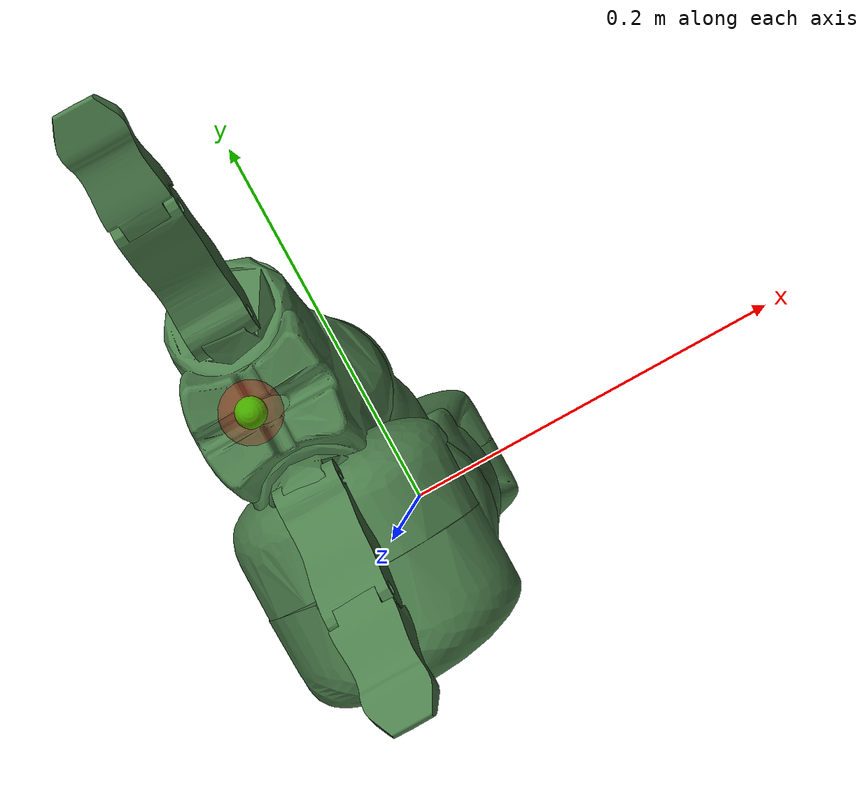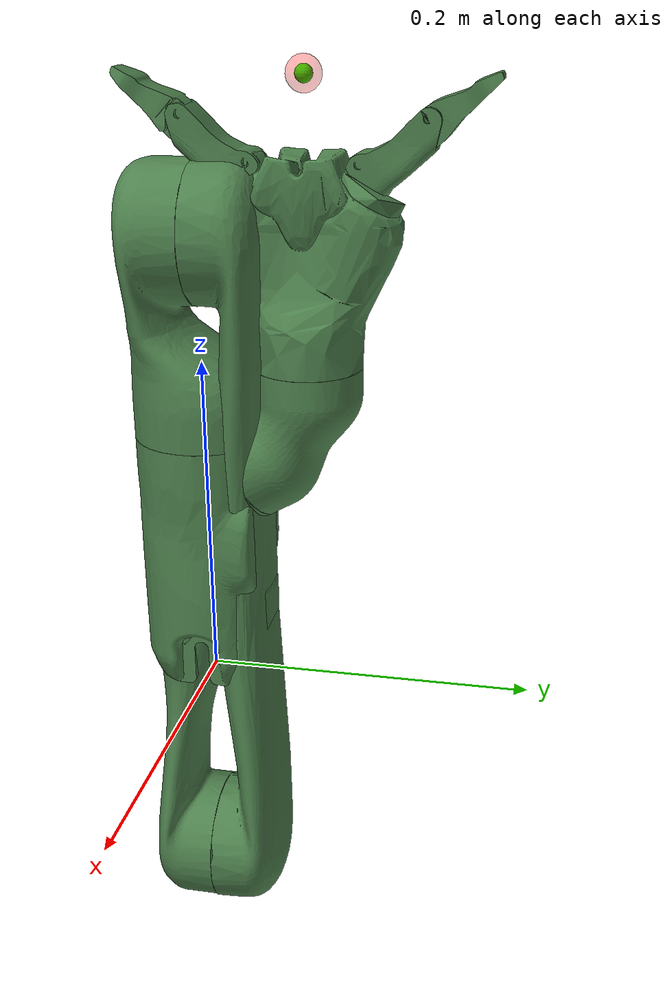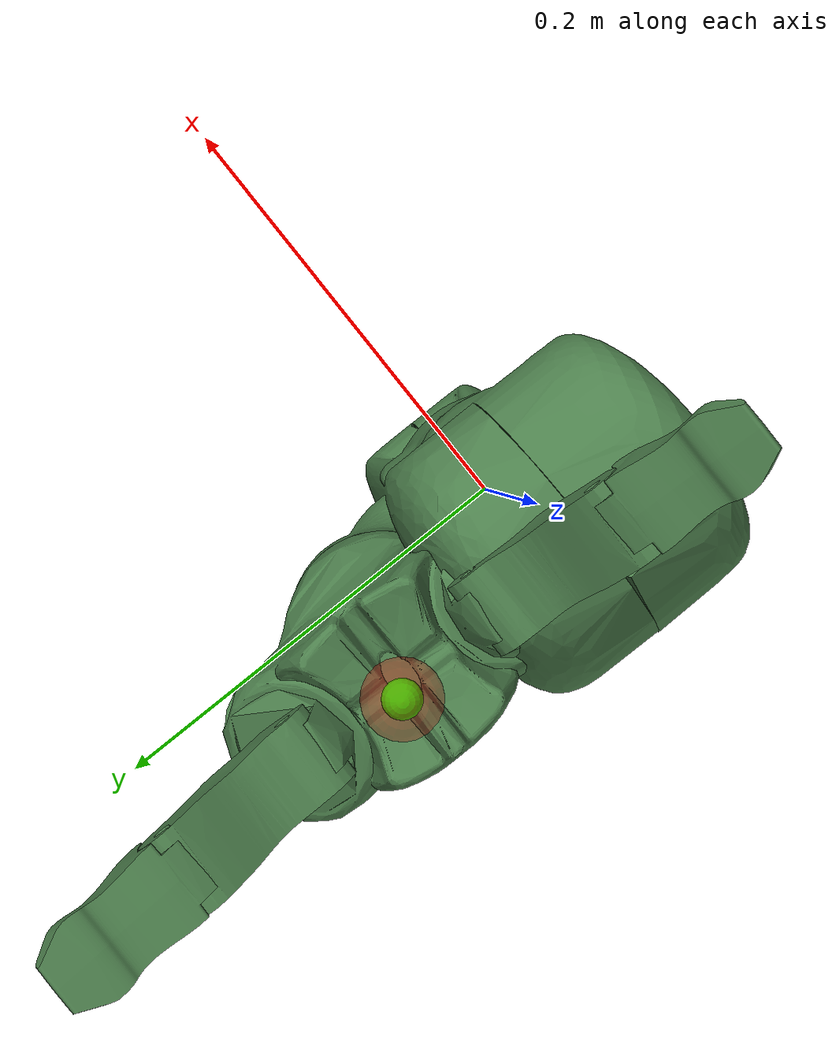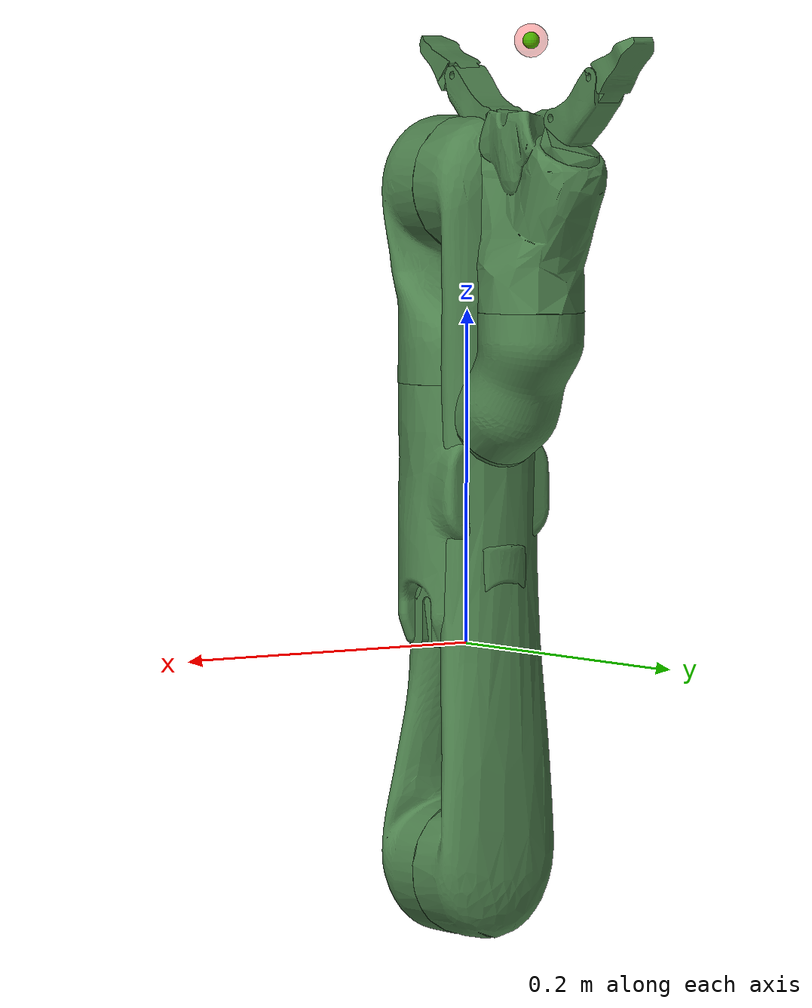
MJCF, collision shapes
<mujoco model="j2n6s200">
  <compiler angle="radian"/>

  <!-- Lighting that brings out specular highlights on the carbon fiber -->
  <visual>
    <headlight ambient="0.3 0.3 0.3" diffuse="0.5 0.5 0.5" specular="0.5 0.5 0.5"/>
  </visual>

  <default>
    <default class="jaco2">
      <joint damping="0.5"/>
      <default class="jaco2_visual">
        <geom type="mesh" contype="0" conaffinity="0" group="2"/>
      </default>
      <default class="jaco2_collision">
        <geom type="mesh" contype="1" conaffinity="1" group="3"
              rgba="0.3 0.5 0.3 0.2"/>
      </default>
      <default class="jaco2_ring">
        <geom type="mesh" contype="0" conaffinity="0" group="2"/>
      </default>
    </default>
  </default>

  <asset>
    <!-- base, shoulder, arm, forearm, wrist: diffuse=0.179, specular=0.461, shininess=50, reflectivity=0.075 -->
    <material name="carbon_fiber" rgba="0.179 0.179 0.179 1" specular="0.461" shininess="0.39" reflectance="0.075"/>
    <!-- ring_big, ring_small: diffuse=0.627, specular=0.5, shininess=50 -->
    <material name="brushed_aluminum" rgba="0.627 0.627 0.627 1" specular="0.5" shininess="0.39"/>
    <!-- hand_2finger: no material in DAE, use same as carbon_fiber -->
    <material name="matte_black" rgba="0.179 0.179 0.179 1" specular="0.461" shininess="0.39" reflectance="0.075"/>
    <!-- finger_proximal, finger_distal: diffuse=0.596, specular=0.5, shininess=50 -->
    <material name="finger_rubber" rgba="0.596 0.596 0.596 1" specular="0.5" shininess="0.39"/>

    <mesh name="base" file="base.stl"/>
    <mesh name="shoulder" file="shoulder.stl"/>
    <mesh name="arm" file="arm.stl"/>
    <mesh name="forearm" file="forearm.stl"/>
    <mesh name="wrist" file="wrist.stl"/>
    <mesh name="hand_2finger" file="hand_2finger.stl"/>
    <mesh name="ring_big" file="ring_big.stl"/>
    <mesh name="ring_small" file="ring_small.stl"/>
    <mesh name="finger_proximal" file="finger_proximal.stl"/>
    <mesh name="finger_distal" file="finger_distal.stl"/>
  </asset>

  <worldbody>
    <body name="j2n6s200_link_base" childclass="jaco2">
      <inertial pos="0 0 0.1255" mass="0.46784" diaginertia="0.000951 0.000951 0.000374"/>
      <geom class="jaco2_visual" mesh="base" material="matte_black"/>
      <geom class="jaco2_collision" mesh="base"/>

      <site name="base_mount_site" pos="0 0 0" size="0.01" rgba="0 0 1 0.3"/>

      <body name="j2n6s200_link_1" pos="0 0 0.15675" quat="0 0 1 0" gravcomp="1">
        <inertial pos="0 -0.002 -0.0605" mass="0.7477" diaginertia="0.00152032 0.00152032 0.00059816"/>
        <!-- Continuous joints (xacro type="continuous"): no limits. -->
        <joint name="j2n6s200_joint_1" axis="0 0 1" armature="0.1"/>
        <geom class="jaco2_visual" mesh="shoulder" material="carbon_fiber"/>
        <geom class="jaco2_ring" mesh="ring_big" material="brushed_aluminum"/>
        <geom class="jaco2_collision" mesh="shoulder"/>

        <body name="j2n6s200_link_2" pos="0 0.0016 -0.11875" quat="0 0 -0.707107 0.707107" gravcomp="1">
          <inertial pos="0 -0.2065 -0.01" quat="0.707107 0.707107 0 0" mass="0.99" diaginertia="0.0105022 0.0105022 0.000792"/>
          <joint name="j2n6s200_joint_2" axis="0 0 1" range="0.820305 5.46288" limited="true" armature="0.1"/>
          <geom class="jaco2_visual" mesh="arm" material="carbon_fiber"/>
          <geom class="jaco2_ring" mesh="ring_big" material="brushed_aluminum"/>
          <geom class="jaco2_collision" mesh="arm"/>

          <body name="j2n6s200_link_3" pos="0 -0.41 0" quat="0 0 1 0" gravcomp="1">
            <inertial pos="0 0.081 -0.0086" quat="0.707107 0.707107 0 0" mass="0.6763" diaginertia="0.00142022 0.00142022 0.000304335"/>
            <joint name="j2n6s200_joint_3" axis="0 0 1" range="0.331613 5.95157" limited="true" armature="0.1"/>
            <geom class="jaco2_visual" mesh="forearm" material="carbon_fiber"/>
            <geom class="jaco2_ring" mesh="ring_big" material="brushed_aluminum"/>
            <geom class="jaco2_collision" mesh="forearm"/>

            <body name="j2n6s200_link_4" pos="0 0.2073 -0.0114" quat="0 0 -0.707107 0.707107" gravcomp="1">
              <inertial pos="0 -0.037 -0.0642" quat="0.5 0.5 -0.5 0.5" mass="0.426367" diaginertia="0.0001428 7.73497e-05 7.73497e-05"/>
              <joint name="j2n6s200_joint_4" axis="0 0 1" armature="0.1"/>
              <geom class="jaco2_visual" mesh="wrist" material="carbon_fiber"/>
              <geom class="jaco2_ring" mesh="ring_small" material="brushed_aluminum"/>
              <geom class="jaco2_collision" mesh="wrist"/>

              <body name="j2n6s200_link_5" pos="0 -0.03703 -0.06414" quat="0 0 0.5 0.866025" gravcomp="1">
                <inertial pos="0 -0.037 -0.0642" quat="0.5 0.5 -0.5 0.5" mass="0.426367" diaginertia="0.0001428 7.73497e-05 7.73497e-05"/>
                <joint name="j2n6s200_joint_5" axis="0 0 1" armature="0.1"/>
                <geom class="jaco2_visual" mesh="wrist" material="carbon_fiber"/>
                <geom class="jaco2_ring" mesh="ring_small" material="brushed_aluminum"/>
                <geom class="jaco2_collision" mesh="wrist"/>

                <body name="j2n6s200_link_6" pos="0 -0.03703 -0.06414" quat="0 0 0.5 0.866025" gravcomp="1">
                  <inertial pos="0 0 -0.06" mass="0.78" diaginertia="0.000624 0.00037 0.00037"/>
                  <joint name="j2n6s200_joint_6" axis="0 0 1" armature="0.1"/>
                  <geom class="jaco2_visual" mesh="hand_2finger" material="carbon_fiber"/>
                  <geom class="jaco2_ring" mesh="ring_small" material="brushed_aluminum"/>
                  <geom class="jaco2_collision" mesh="hand_2finger"/>

                  <!-- Tool attachment site — articutool/gripper attaches here -->
                  <site name="tool_attachment_site" pos="0 0 -0.16" quat="0 1 0 0" size="0.01" rgba="1 0 0 0.3"/>

                  <!-- Forque attachment site — exact xacro transform from
                       FTArmMount_to_arm: xyz=[0.0065, -0.011, -0.0075],
                       rpy=[π/2, 0, π/2] = quat=[0.5, 0.5, 0.5, 0.5] -->
                  <site name="forque_attachment_site" pos="0.0065 -0.011 -0.0075"
                        quat="0.5 0.5 0.5 0.5" size="0.005" rgba="0 0 1 0.3"/>

                  <!-- Articutool attachment site — composed from:
                       end_effector (xyz=[0,0,-0.16], rpy=[π,0,π/2]) then
                       articutool (xyz=[0,-0.00225,-0.001], rpy=[0,0,π/2]) -->
                  <site name="articutool_attachment_site" pos="-0.00225 0 -0.159"
                        quat="0 1 0 0" size="0.005" rgba="0 0 1 0.3"/>

                  <!-- Camera attachment site — exact xacro transform from
                       camera_assembly: xyz=[0.0165, 0, 0.0011],
                       rpy=[3π/2, 0, 3π/2] = quat=[0.5, -0.5, 0.5, -0.5] -->
                  <site name="camera_attachment_site" pos="0.0165 0 0.0011"
                        quat="0.5 -0.5 0.5 -0.5" size="0.005" rgba="1 0.5 0 0.3"/>

                  <!-- EE site for IK (at the URDF end_effector frame) -->
                  <site name="ee_site" pos="0 0 -0.16" quat="0 0.707107 0.707107 0" size="0.005" rgba="0 1 0 1"/>

                  <body name="j2n6s200_link_finger_1" pos="-0.0025 0.03095 -0.11482" quat="0.314405 -0.633364 -0.314405 0.633364" gravcomp="1">
                    <inertial pos="0.022 0 0" mass="0.01" diaginertia="7.9e-07 7.9e-07 8e-08"/>
                    <joint name="j2n6s200_joint_finger_1" axis="0 0 1" range="0 1.51" limited="true" damping="0.05" armature="0.001"/>
                    <geom class="jaco2_visual" mesh="finger_proximal" material="finger_rubber"/>
                    <geom class="jaco2_collision" mesh="finger_proximal"/>
                    <body name="j2n6s200_link_finger_tip_1" pos="0.044 -0.003 0" gravcomp="1">
                      <inertial pos="0.022 0 0" mass="0.01" diaginertia="7.9e-07 7.9e-07 8e-08"/>
                      <joint name="j2n6s200_joint_finger_tip_1" axis="0 0 1" range="0 1.2" limited="true"
                             stiffness="0.2" damping="0.05" springref="0" armature="0.001"/>
                      <geom class="jaco2_visual" mesh="finger_distal" material="finger_rubber"/>
                      <geom class="jaco2_collision" mesh="finger_distal"/>
                    </body>
                  </body>
                  <body name="j2n6s200_link_finger_2" pos="-0.0025 -0.03095 -0.11482" quat="0.633364 -0.314405 0.633364 -0.314405" gravcomp="1">
                    <inertial pos="0.022 0 0" mass="0.01" diaginertia="7.9e-07 7.9e-07 8e-08"/>
                    <joint name="j2n6s200_joint_finger_2" axis="0 0 1" range="0 1.51" limited="true" damping="0.05" armature="0.001"/>
                    <geom class="jaco2_visual" mesh="finger_proximal" material="finger_rubber"/>
                    <geom class="jaco2_collision" mesh="finger_proximal"/>
                    <body name="j2n6s200_link_finger_tip_2" pos="0.044 -0.003 0" gravcomp="1">
                      <inertial pos="0.022 0 0" mass="0.01" diaginertia="7.9e-07 7.9e-07 8e-08"/>
                      <joint name="j2n6s200_joint_finger_tip_2" axis="0 0 1" range="0 1.2" limited="true"
                             stiffness="0.2" damping="0.05" springref="0" armature="0.001"/>
                      <geom class="jaco2_visual" mesh="finger_distal" material="finger_rubber"/>
                      <geom class="jaco2_collision" mesh="finger_distal"/>
                    </body>
                  </body>

                </body>
              </body>
            </body>
          </body>
        </body>
      </body>
    </body>
  </worldbody>

  <tendon>
    <fixed name="finger_1_tendon">
      <joint joint="j2n6s200_joint_finger_1" coef="1.0"/>
      <joint joint="j2n6s200_joint_finger_tip_1" coef="0.5"/>
    </fixed>
    <fixed name="finger_2_tendon">
      <joint joint="j2n6s200_joint_finger_2" coef="1.0"/>
      <joint joint="j2n6s200_joint_finger_tip_2" coef="0.5"/>
    </fixed>
  </tendon>

  <actuator>
    <!-- Arm joints -->
    <!-- Effort limits from URDF: J1=40, J2=80, J3=40, J4-6=20 Nm -->
    <!-- Gains scaled to match geodude UR5e stiffness-to-mass ratio.
         kd = kp/15 balances damping vs position hold within forcerange. -->
    <general name="act_j2n6s200_joint_1" joint="j2n6s200_joint_1" gaintype="fixed" biastype="affine" gainprm="600" biasprm="0 -600 -40" forcerange="-40 40"/>
    <general name="act_j2n6s200_joint_2" joint="j2n6s200_joint_2" gaintype="fixed" biastype="affine" gainprm="800" biasprm="0 -800 -53" ctrlrange="0.820305 5.46288" forcerange="-80 80"/>
    <!-- j3-j6 kv tuned for ζ≈1 critical damping (was ζ=1.5-1.9 overdamped).
         kv = 2*sqrt(kp*J_eff) at representative configs. See ada_assets#3. -->
    <general name="act_j2n6s200_joint_3" joint="j2n6s200_joint_3" gaintype="fixed" biastype="affine" gainprm="550" biasprm="0 -550 -25" ctrlrange="0.331613 5.95157" forcerange="-40 40"/>
    <general name="act_j2n6s200_joint_4" joint="j2n6s200_joint_4" gaintype="fixed" biastype="affine" gainprm="350" biasprm="0 -350 -14" forcerange="-20 20"/>
    <general name="act_j2n6s200_joint_5" joint="j2n6s200_joint_5" gaintype="fixed" biastype="affine" gainprm="350" biasprm="0 -350 -12" forcerange="-20 20"/>
    <general name="act_j2n6s200_joint_6" joint="j2n6s200_joint_6" gaintype="fixed" biastype="affine" gainprm="350" biasprm="0 -350 -12" forcerange="-20 20"/>
    <general name="act_finger_1" tendon="finger_1_tendon" gaintype="fixed" biastype="affine"
             gainprm="0.3" biasprm="0 -0.3 -0.05" ctrlrange="0 1.51" forcerange="-2 2"/>
    <general name="act_finger_2" tendon="finger_2_tendon" gaintype="fixed" biastype="affine"
             gainprm="0.3" biasprm="0 -0.3 -0.05" ctrlrange="0 1.51" forcerange="-2 2"/>
  </actuator>

  <contact>
    <exclude body1="j2n6s200_link_base" body2="j2n6s200_link_1"/>
    <exclude body1="j2n6s200_link_1" body2="j2n6s200_link_2"/>
    <exclude body1="j2n6s200_link_2" body2="j2n6s200_link_3"/>
    <exclude body1="j2n6s200_link_3" body2="j2n6s200_link_4"/>
    <exclude body1="j2n6s200_link_4" body2="j2n6s200_link_5"/>
    <exclude body1="j2n6s200_link_5" body2="j2n6s200_link_6"/>
    <exclude body1="j2n6s200_link_6" body2="j2n6s200_link_finger_1"/>
    <exclude body1="j2n6s200_link_6" body2="j2n6s200_link_finger_2"/>
    <exclude body1="j2n6s200_link_finger_1" body2="j2n6s200_link_finger_tip_1"/>
    <exclude body1="j2n6s200_link_finger_2" body2="j2n6s200_link_finger_tip_2"/>
  </contact>

  <!-- qpos order: 6 arm + finger_1_proximal + finger_tip_1 + finger_2_proximal + finger_tip_2
       Distal joints at 0 (spring holds them straight in free space). -->
  <keyframe>
    <key name="above_plate" qpos="-2.579 3.010 1.770 -2.076 -1.791 2.858 1.33 0 1.33 0"/>
    <key name="resting" qpos="-1.860 2.181 0.364 -5.187 -0.470 -0.814 1.33 0 1.33 0"/>
    <key name="staging" qpos="-2.122 4.496 4.022 -4.710 -2.493 -1.926 1.33 0 1.33 0"/>
    <key name="stow" qpos="-1.521 2.601 0.348 -4.000 0.228 3.879 1.33 0 1.33 0"/>
  </keyframe>
</mujoco>
